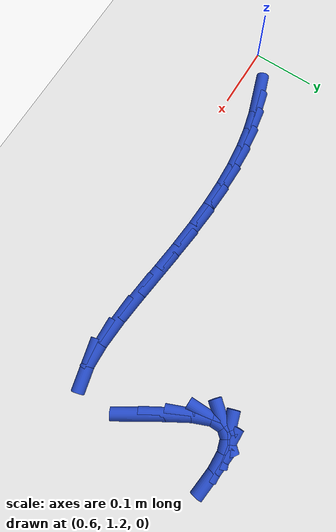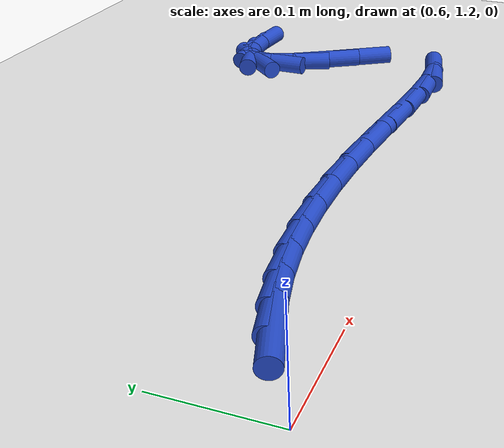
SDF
<sdf version="1.6">
 <world name="default">
  <model name="ground_plane">
   <static>1</static>
   <link name="link">
    <collision name="collision">
     <geometry><plane><normal>0 0 1</normal><size>100 100</size></plane></geometry>
     <surface><friction><ode><mu>100</mu><mu2>50</mu2></ode></friction></surface>
    </collision>
    <visual name="visual">
     <cast_shadows>0</cast_shadows>
     <geometry><plane><normal>0 0 1</normal><size>100 100</size></plane></geometry>
     <material>
      <script><uri>file://media/materials/scripts/gazebo.material</uri><name>Gazebo/WhiteGlow</name></script>
     </material>
    </visual>
   </link>
  </model>
  <model name="line">
   <link name="link_44">
    <pose>0.6729718780167485 1.2422969707165374 0.01 0 1.57 0.34066023680113444</pose>
    <collision name="collision">
     <geometry><cylinder><radius>0.01</radius><length>0.08</length></cylinder></geometry>
    </collision>
    <visual name="visual">
     <material>
      <script><name>Gazebo/Blue</name><uri>file://media/materials/scripts/gazebo.material</uri></script>
     </material>
     <geometry><cylinder><radius>0.01</radius><length>0.08</length></cylinder></geometry>
    </visual>
   </link>
   <link name="link_45">
    <pose>0.7016434522664027 1.2524604675974003 0.01 0 1.57 0.25530014319455663</pose>
    <collision name="collision">
     <geometry><cylinder><radius>0.01</radius><length>0.08</length></cylinder></geometry>
    </collision>
    <visual name="visual">
     <material>
      <script><name>Gazebo/Blue</name><uri>file://media/materials/scripts/gazebo.material</uri></script>
     </material>
     <geometry><cylinder><radius>0.01</radius><length>0.08</length></cylinder></geometry>
    </visual>
   </link>
   <link name="link_46">
    <pose>0.7320961968035657 1.2604084918614584 0.01 0 1.57 0.1778230280413665</pose>
    <collision name="collision">
     <geometry><cylinder><radius>0.01</radius><length>0.08</length></cylinder></geometry>
    </collision>
    <visual name="visual">
     <material>
      <script><name>Gazebo/Blue</name><uri>file://media/materials/scripts/gazebo.material</uri></script>
     </material>
     <geometry><cylinder><radius>0.01</radius><length>0.08</length></cylinder></geometry>
    </visual>
   </link>
   <link name="link_47">
    <pose>0.7644465851492007 1.2662225475948747 0.01 0 1.57 0.10902746097904381</pose>
    <collision name="collision">
     <geometry><cylinder><radius>0.01</radius><length>0.08</length></cylinder></geometry>
    </collision>
    <visual name="visual">
     <material>
      <script><name>Gazebo/Blue</name><uri>file://media/materials/scripts/gazebo.material</uri></script>
     </material>
     <geometry><cylinder><radius>0.01</radius><length>0.08</length></cylinder></geometry>
    </visual>
   </link>
   <link name="link_48">
    <pose>0.7988110908242723 1.2699841388838116 0.01 0 1.57 0.04902565736827293</pose>
    <collision name="collision">
     <geometry><cylinder><radius>0.01</radius><length>0.08</length></cylinder></geometry>
    </collision>
    <visual name="visual">
     <material>
      <script><name>Gazebo/Blue</name><uri>file://media/materials/scripts/gazebo.material</uri></script>
     </material>
     <geometry><cylinder><radius>0.01</radius><length>0.08</length></cylinder></geometry>
    </visual>
   </link>
   <link name="link_49">
    <pose>0.8353061873497442 1.2717747698144317 0.01 0 1.57 -0.0025508418967830513</pose>
    <collision name="collision">
     <geometry><cylinder><radius>0.01</radius><length>0.08</length></cylinder></geometry>
    </collision>
    <visual name="visual">
     <material>
      <script><name>Gazebo/Blue</name><uri>file://media/materials/scripts/gazebo.material</uri></script>
     </material>
     <geometry><cylinder><radius>0.01</radius><length>0.08</length></cylinder></geometry>
    </visual>
   </link>
   <link name="link_50">
    <pose>0.8740483482465817 1.2716759444728987 0.01 0 1.57 -0.04635395328040502</pose>
    <collision name="collision">
     <geometry><cylinder><radius>0.01</radius><length>0.08</length></cylinder></geometry>
    </collision>
    <visual name="visual">
     <material>
      <script><name>Gazebo/Blue</name><uri>file://media/materials/scripts/gazebo.material</uri></script>
     </material>
     <geometry><cylinder><radius>0.01</radius><length>0.08</length></cylinder></geometry>
    </visual>
   </link>
   <link name="link_51">
    <pose>0.9151540470357482 1.2697691669453743 0.01 0 1.57 -0.08316591058556339</pose>
    <collision name="collision">
     <geometry><cylinder><radius>0.01</radius><length>0.08</length></cylinder></geometry>
    </collision>
    <visual name="visual">
     <material>
      <script><name>Gazebo/Blue</name><uri>file://media/materials/scripts/gazebo.material</uri></script>
     </material>
     <geometry><cylinder><radius>0.01</radius><length>0.08</length></cylinder></geometry>
    </visual>
   </link>
   <link name="link_52">
    <pose>0.9587397572382077 1.266135941318022 0.01 0 1.57 -0.11112628012779982</pose>
    <collision name="collision">
     <geometry><cylinder><radius>0.01</radius><length>0.08</length></cylinder></geometry>
    </collision>
    <visual name="visual">
     <material>
      <script><name>Gazebo/Blue</name><uri>file://media/materials/scripts/gazebo.material</uri></script>
     </material>
     <geometry><cylinder><radius>0.01</radius><length>0.08</length></cylinder></geometry>
    </visual>
   </link>
   <link name="link_53">
    <pose>1.0046283662649889 1.2610154156473448 0.01 0 1.57 -0.11852309784575374</pose>
    <collision name="collision">
     <geometry><cylinder><radius>0.01</radius><length>0.08</length></cylinder></geometry>
    </collision>
    <visual name="visual">
     <material>
      <script><name>Gazebo/Blue</name><uri>file://media/materials/scripts/gazebo.material</uri></script>
     </material>
     <geometry><cylinder><radius>0.01</radius><length>0.08</length></cylinder></geometry>
    </visual>
   </link>
   <link name="link_54">
    <pose>1.051084738678082 1.255483333794247 0.01 0 1.57 -0.10218950490863456</pose>
    <collision name="collision">
     <geometry><cylinder><radius>0.01</radius><length>0.08</length></cylinder></geometry>
    </collision>
    <visual name="visual">
     <material>
      <script><name>Gazebo/Blue</name><uri>file://media/materials/scripts/gazebo.material</uri></script>
     </material>
     <geometry><cylinder><radius>0.01</radius><length>0.08</length></cylinder></geometry>
    </visual>
   </link>
   <link name="link_55">
    <pose>1.095858892195806 1.250891891733022 0.01 0 1.57 -0.05621739479275595</pose>
    <collision name="collision">
     <geometry><cylinder><radius>0.01</radius><length>0.08</length></cylinder></geometry>
    </collision>
    <visual name="visual">
     <material>
      <script><name>Gazebo/Blue</name><uri>file://media/materials/scripts/gazebo.material</uri></script>
     </material>
     <geometry><cylinder><radius>0.01</radius><length>0.08</length></cylinder></geometry>
    </visual>
   </link>
   <link name="link_56">
    <pose>1.1367005193973914 1.2485934600246182 0.01 0 1.57 0.038843582428906565</pose>
    <collision name="collision">
     <geometry><cylinder><radius>0.01</radius><length>0.08</length></cylinder></geometry>
    </collision>
    <visual name="visual">
     <material>
      <script><name>Gazebo/Blue</name><uri>file://media/materials/scripts/gazebo.material</uri></script>
     </material>
     <geometry><cylinder><radius>0.01</radius><length>0.08</length></cylinder></geometry>
    </visual>
   </link>
   <link name="link_57">
    <pose>1.1713593128620694 1.2499404092299844 0.01 0 1.57 0.23736649497310514</pose>
    <collision name="collision">
     <geometry><cylinder><radius>0.01</radius><length>0.08</length></cylinder></geometry>
    </collision>
    <visual name="visual">
     <material>
      <script><name>Gazebo/Blue</name><uri>file://media/materials/scripts/gazebo.material</uri></script>
     </material>
     <geometry><cylinder><radius>0.01</radius><length>0.08</length></cylinder></geometry>
    </visual>
   </link>
   <link name="link_62">
    <pose>1.188315530916816 1.3493046504083843 0.01 0 1.57 -1.0240971223593052</pose>
    <collision name="collision">
     <geometry><cylinder><radius>0.01</radius><length>0.08</length></cylinder></geometry>
    </collision>
    <visual name="visual">
     <material>
      <script><name>Gazebo/Blue</name><uri>file://media/materials/scripts/gazebo.material</uri></script>
     </material>
     <geometry><cylinder><radius>0.01</radius><length>0.08</length></cylinder></geometry>
    </visual>
   </link>
   <link name="link_63">
    <pose>1.1679439589579075 1.3827789883750543 0.01 0 1.57 -1.0514834174310226</pose>
    <collision name="collision">
     <geometry><cylinder><radius>0.01</radius><length>0.08</length></cylinder></geometry>
    </collision>
    <visual name="visual">
     <material>
      <script><name>Gazebo/Blue</name><uri>file://media/materials/scripts/gazebo.material</uri></script>
     </material>
     <geometry><cylinder><radius>0.01</radius><length>0.08</length></cylinder></geometry>
    </visual>
   </link>
   <link name="link_64">
    <pose>1.149892671515298 1.4143565133231863 0.01 0 1.57 -1.1880713635314355</pose>
    <collision name="collision">
     <geometry><cylinder><radius>0.01</radius><length>0.08</length></cylinder></geometry>
    </collision>
    <visual name="visual">
     <material>
      <script><name>Gazebo/Blue</name><uri>file://media/materials/scripts/gazebo.material</uri></script>
     </material>
     <geometry><cylinder><radius>0.01</radius><length>0.08</length></cylinder></geometry>
    </visual>
   </link>
   <link name="link_65">
    <pose>1.139220179012301 1.4408670268113075 0.01 0 1.57 1.5591934741708928</pose>
    <collision name="collision">
     <geometry><cylinder><radius>0.01</radius><length>0.08</length></cylinder></geometry>
    </collision>
    <visual name="visual">
     <material>
      <script><name>Gazebo/Blue</name><uri>file://media/materials/scripts/gazebo.material</uri></script>
     </material>
     <geometry><cylinder><radius>0.01</radius><length>0.08</length></cylinder></geometry>
    </visual>
   </link>
   <link name="link_66">
    <pose>1.1394433780248574 1.4601027271649014 0.01 0 1.57 0.8638376838934936</pose>
    <collision name="collision">
     <geometry><cylinder><radius>0.01</radius><length>0.08</length></cylinder></geometry>
    </collision>
    <visual name="visual">
     <material>
      <script><name>Gazebo/Blue</name><uri>file://media/materials/scripts/gazebo.material</uri></script>
     </material>
     <geometry><cylinder><radius>0.01</radius><length>0.08</length></cylinder></geometry>
    </visual>
   </link>
   <link name="link_67">
    <pose>1.1499676388981648 1.4724225511689326 0.01 0 1.57 0.306419315666187</pose>
    <collision name="collision">
     <geometry><cylinder><radius>0.01</radius><length>0.08</length></cylinder></geometry>
    </collision>
    <visual name="visual">
     <material>
      <script><name>Gazebo/Blue</name><uri>file://media/materials/scripts/gazebo.material</uri></script>
     </material>
     <geometry><cylinder><radius>0.01</radius><length>0.08</length></cylinder></geometry>
    </visual>
   </link>
   <link name="link_68">
    <pose>1.169520319075322 1.4786087046559573 0.01 0 1.57 0.030555699995595285</pose>
    <collision name="collision">
     <geometry><cylinder><radius>0.01</radius><length>0.08</length></cylinder></geometry>
    </collision>
    <visual name="visual">
     <material>
      <script><name>Gazebo/Blue</name><uri>file://media/materials/scripts/gazebo.material</uri></script>
     </material>
     <geometry><cylinder><radius>0.01</radius><length>0.08</length></cylinder></geometry>
    </visual>
   </link>
   <link name="link_69">
    <pose>1.1968287759994303 1.4794433934585334 0.01 0 1.57 -0.11007104141596746</pose>
    <collision name="collision">
     <geometry><cylinder><radius>0.01</radius><length>0.08</length></cylinder></geometry>
    </collision>
    <visual name="visual">
     <material>
      <script><name>Gazebo/Blue</name><uri>file://media/materials/scripts/gazebo.material</uri></script>
     </material>
     <geometry><cylinder><radius>0.01</radius><length>0.08</length></cylinder></geometry>
    </visual>
   </link>
  </model>
 </world>
</sdf>
